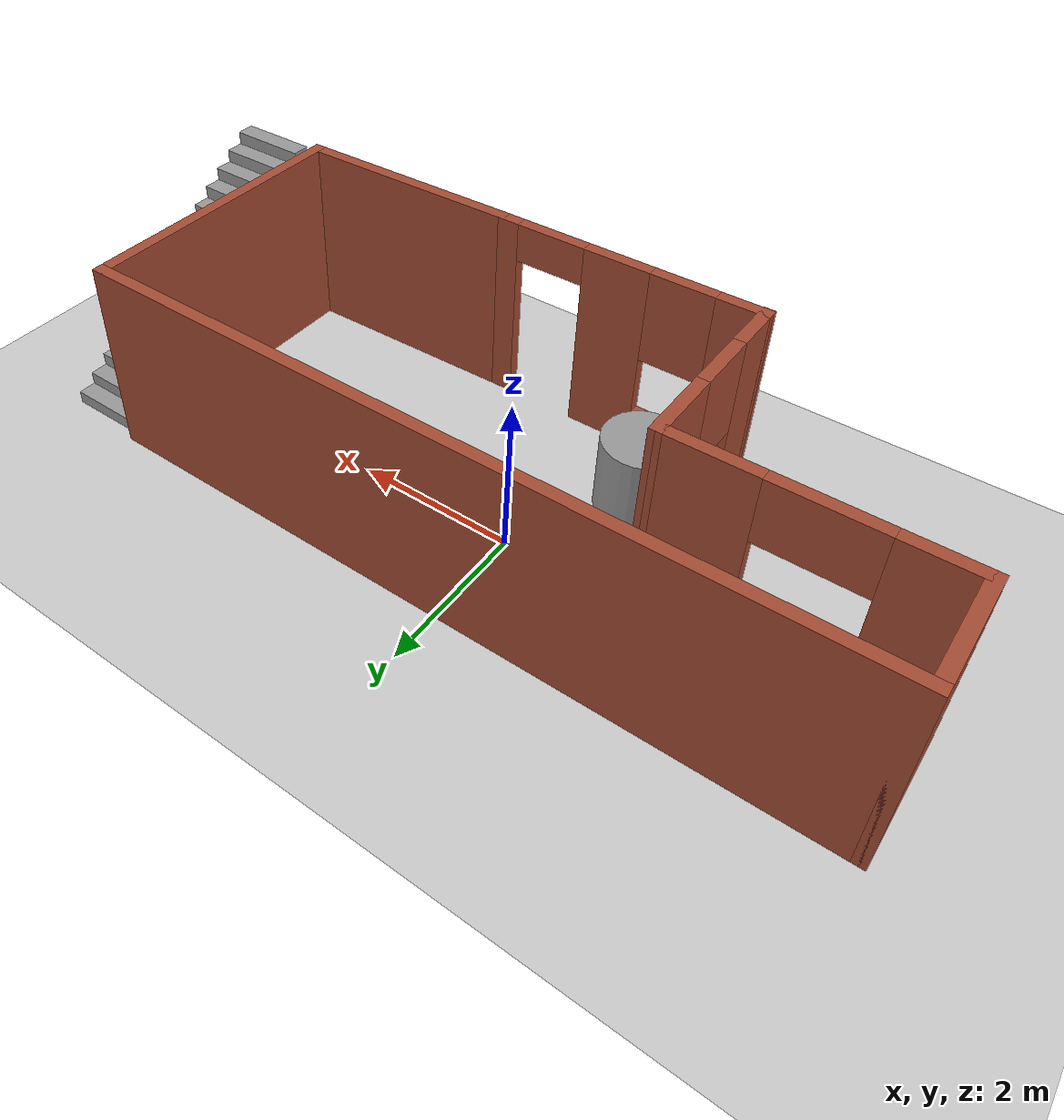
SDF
<sdf version="1.7">
 <world name="default">
  <light name="sun" type="directional">
   <pose>0 0 10 0 -0 0</pose>
   <diffuse>0.8 0.8 0.8 1</diffuse>
   <specular>0.2 0.2 0.2 1</specular>
   <attenuation>
    <range>1000</range>
    <constant>0.9</constant>
    <linear>0.01</linear>
    <quadratic>0.001</quadratic>
   </attenuation>
   <direction>-0.5 0.1 -0.9</direction>
   <spot><inner_angle>0</inner_angle><outer_angle>0</outer_angle><falloff>0</falloff></spot>
  </light>
  <model name="ground_plane">
   <static>1</static>
   <link name="link">
    <collision name="collision">
     <geometry><plane><normal>0 0 1</normal><size>100 100</size></plane></geometry>
     <surface><friction><ode><mu>100</mu><mu2>50</mu2></ode></friction></surface>
    </collision>
    <visual name="visual">
     <cast_shadows>0</cast_shadows>
     <geometry><plane><normal>0 0 1</normal><size>100 100</size></plane></geometry>
     <material>
      <script><uri>file://media/materials/scripts/gazebo.material</uri><name>Gazebo/Grey</name></script>
     </material>
    </visual>
   </link>
  </model>
  <gravity>0 0 -9.8</gravity>
  <magnetic_field>6e-06 2.3e-05 -4.2e-05</magnetic_field>
  <atmosphere type="adiabatic"/>
  <physics type="ode">
   <max_step_size>0.001</max_step_size>
   <real_time_factor>1</real_time_factor>
   <real_time_update_rate>1000</real_time_update_rate>
  </physics>
  <scene><ambient>0.4 0.4 0.4 1</ambient><background>0.7 0.7 0.7 1</background><shadows>1</shadows></scene>
  <audio><device>default</device></audio>
  <spherical_coordinates>
   <surface_model>EARTH_WGS84</surface_model>
   <latitude_deg>0</latitude_deg>
   <longitude_deg>0</longitude_deg>
   <elevation>0</elevation>
   <heading_deg>0</heading_deg>
  </spherical_coordinates>
  <model name="EJemplo1">
   <pose>0.530243 -0.568769 0 0 -0 0</pose>
   <link name="Stairs_0">
    <visual name="Stairs_0_Visual_0">
     <pose>4.77726 1.68486 0.083333 0 -0 0</pose>
     <geometry><box><size>1 0.233333 0.166667</size></box></geometry>
     <material>
      <script><uri>file://media/materials/scripts/gazebo.material</uri><name>Gazebo/Grey</name></script>
      <ambient>1 1 1 1</ambient>
     </material>
     <meta><layer>0</layer></meta>
    </visual>
    <collision name="Stairs_0_Collision_0">
     <geometry><box><size>1 0.233333 0.166667</size></box></geometry>
     <pose>4.77726 1.68486 0.083333 0 -0 0</pose>
    </collision>
    <visual name="Stairs_0_Visual_1">
     <pose>4.77726 1.45153 0.25 0 -0 0</pose>
     <geometry><box><size>1 0.233333 0.166667</size></box></geometry>
     <material>
      <script><uri>file://media/materials/scripts/gazebo.material</uri><name>Gazebo/Grey</name></script>
      <ambient>1 1 1 1</ambient>
     </material>
     <meta><layer>0</layer></meta>
    </visual>
    <collision name="Stairs_0_Collision_1">
     <geometry><box><size>1 0.233333 0.166667</size></box></geometry>
     <pose>4.77726 1.45153 0.25 0 -0 0</pose>
    </collision>
    <visual name="Stairs_0_Visual_2">
     <pose>4.77726 1.2182 0.416667 0 -0 0</pose>
     <geometry><box><size>1 0.233333 0.166667</size></box></geometry>
     <material>
      <script><uri>file://media/materials/scripts/gazebo.material</uri><name>Gazebo/Grey</name></script>
      <ambient>1 1 1 1</ambient>
     </material>
     <meta><layer>0</layer></meta>
    </visual>
    <collision name="Stairs_0_Collision_2">
     <geometry><box><size>1 0.233333 0.166667</size></box></geometry>
     <pose>4.77726 1.2182 0.416667 0 -0 0</pose>
    </collision>
    <visual name="Stairs_0_Visual_3">
     <pose>4.77726 0.984864 0.583333 0 -0 0</pose>
     <geometry><box><size>1 0.233333 0.166667</size></box></geometry>
     <material>
      <script><uri>file://media/materials/scripts/gazebo.material</uri><name>Gazebo/Grey</name></script>
      <ambient>1 1 1 1</ambient>
     </material>
     <meta><layer>0</layer></meta>
    </visual>
    <collision name="Stairs_0_Collision_3">
     <geometry><box><size>1 0.233333 0.166667</size></box></geometry>
     <pose>4.77726 0.984864 0.583333 0 -0 0</pose>
    </collision>
    <visual name="Stairs_0_Visual_4">
     <pose>4.77726 0.75153 0.75 0 -0 0</pose>
     <geometry><box><size>1 0.233333 0.166667</size></box></geometry>
     <material>
      <script><uri>file://media/materials/scripts/gazebo.material</uri><name>Gazebo/Grey</name></script>
      <ambient>1 1 1 1</ambient>
     </material>
     <meta><layer>0</layer></meta>
    </visual>
    <collision name="Stairs_0_Collision_4">
     <geometry><box><size>1 0.233333 0.166667</size></box></geometry>
     <pose>4.77726 0.75153 0.75 0 -0 0</pose>
    </collision>
    <visual name="Stairs_0_Visual_5">
     <pose>4.77726 0.518197 0.916667 0 -0 0</pose>
     <geometry><box><size>1 0.233333 0.166667</size></box></geometry>
     <material>
      <script><uri>file://media/materials/scripts/gazebo.material</uri><name>Gazebo/Grey</name></script>
      <ambient>1 1 1 1</ambient>
     </material>
     <meta><layer>0</layer></meta>
    </visual>
    <collision name="Stairs_0_Collision_5">
     <geometry><box><size>1 0.233333 0.166667</size></box></geometry>
     <pose>4.77726 0.518197 0.916667 0 -0 0</pose>
    </collision>
    <visual name="Stairs_0_Visual_6">
     <pose>4.77726 0.284864 1.08333 0 -0 0</pose>
     <geometry><box><size>1 0.233333 0.166667</size></box></geometry>
     <material>
      <script><uri>file://media/materials/scripts/gazebo.material</uri><name>Gazebo/Grey</name></script>
      <ambient>1 1 1 1</ambient>
     </material>
     <meta><layer>0</layer></meta>
    </visual>
    <collision name="Stairs_0_Collision_6">
     <geometry><box><size>1 0.233333 0.166667</size></box></geometry>
     <pose>4.77726 0.284864 1.08333 0 -0 0</pose>
    </collision>
    <visual name="Stairs_0_Visual_7">
     <pose>4.77726 0.05153 1.25 0 -0 0</pose>
     <geometry><box><size>1 0.233333 0.166667</size></box></geometry>
     <material>
      <script><uri>file://media/materials/scripts/gazebo.material</uri><name>Gazebo/Grey</name></script>
      <ambient>1 1 1 1</ambient>
     </material>
     <meta><layer>0</layer></meta>
    </visual>
    <collision name="Stairs_0_Collision_7">
     <geometry><box><size>1 0.233333 0.166667</size></box></geometry>
     <pose>4.77726 0.05153 1.25 0 -0 0</pose>
    </collision>
    <visual name="Stairs_0_Visual_8">
     <pose>4.77726 -0.181803 1.41667 0 -0 0</pose>
     <geometry><box><size>1 0.233333 0.166667</size></box></geometry>
     <material>
      <script><uri>file://media/materials/scripts/gazebo.material</uri><name>Gazebo/Grey</name></script>
      <ambient>1 1 1 1</ambient>
     </material>
     <meta><layer>0</layer></meta>
    </visual>
    <collision name="Stairs_0_Collision_8">
     <geometry><box><size>1 0.233333 0.166667</size></box></geometry>
     <pose>4.77726 -0.181803 1.41667 0 -0 0</pose>
    </collision>
    <visual name="Stairs_0_Visual_9">
     <pose>4.77726 -0.415136 1.58333 0 -0 0</pose>
     <geometry><box><size>1 0.233333 0.166667</size></box></geometry>
     <material>
      <script><uri>file://media/materials/scripts/gazebo.material</uri><name>Gazebo/Grey</name></script>
      <ambient>1 1 1 1</ambient>
     </material>
     <meta><layer>0</layer></meta>
    </visual>
    <collision name="Stairs_0_Collision_9">
     <geometry><box><size>1 0.233333 0.166667</size></box></geometry>
     <pose>4.77726 -0.415136 1.58333 0 -0 0</pose>
    </collision>
    <visual name="Stairs_0_Visual_10">
     <pose>4.77726 -0.648469 1.75 0 -0 0</pose>
     <geometry><box><size>1 0.233333 0.166667</size></box></geometry>
     <material>
      <script><uri>file://media/materials/scripts/gazebo.material</uri><name>Gazebo/Grey</name></script>
      <ambient>1 1 1 1</ambient>
     </material>
     <meta><layer>0</layer></meta>
    </visual>
    <collision name="Stairs_0_Collision_10">
     <geometry><box><size>1 0.233333 0.166667</size></box></geometry>
     <pose>4.77726 -0.648469 1.75 0 -0 0</pose>
    </collision>
    <visual name="Stairs_0_Visual_11">
     <pose>4.77726 -0.881803 1.91667 0 -0 0</pose>
     <geometry><box><size>1 0.233333 0.166667</size></box></geometry>
     <material>
      <script><uri>file://media/materials/scripts/gazebo.material</uri><name>Gazebo/Grey</name></script>
      <ambient>1 1 1 1</ambient>
     </material>
     <meta><layer>0</layer></meta>
    </visual>
    <collision name="Stairs_0_Collision_11">
     <geometry><box><size>1 0.233333 0.166667</size></box></geometry>
     <pose>4.77726 -0.881803 1.91667 0 -0 0</pose>
    </collision>
    <visual name="Stairs_0_Visual_12">
     <pose>4.77726 -1.11514 2.08333 0 -0 0</pose>
     <geometry><box><size>1 0.233333 0.166667</size></box></geometry>
     <material>
      <script><uri>file://media/materials/scripts/gazebo.material</uri><name>Gazebo/Grey</name></script>
      <ambient>1 1 1 1</ambient>
     </material>
     <meta><layer>0</layer></meta>
    </visual>
    <collision name="Stairs_0_Collision_12">
     <geometry><box><size>1 0.233333 0.166667</size></box></geometry>
     <pose>4.77726 -1.11514 2.08333 0 -0 0</pose>
    </collision>
    <visual name="Stairs_0_Visual_13">
     <pose>4.77726 -1.34847 2.25 0 -0 0</pose>
     <geometry><box><size>1 0.233333 0.166667</size></box></geometry>
     <material>
      <script><uri>file://media/materials/scripts/gazebo.material</uri><name>Gazebo/Grey</name></script>
      <ambient>1 1 1 1</ambient>
     </material>
     <meta><layer>0</layer></meta>
    </visual>
    <collision name="Stairs_0_Collision_13">
     <geometry><box><size>1 0.233333 0.166667</size></box></geometry>
     <pose>4.77726 -1.34847 2.25 0 -0 0</pose>
    </collision>
    <visual name="Stairs_0_Visual_14">
     <pose>4.77726 -1.5818 2.41667 0 -0 0</pose>
     <geometry><box><size>1 0.233333 0.166667</size></box></geometry>
     <material>
      <script><uri>file://media/materials/scripts/gazebo.material</uri><name>Gazebo/Grey</name></script>
      <ambient>1 1 1 1</ambient>
     </material>
     <meta><layer>0</layer></meta>
    </visual>
    <collision name="Stairs_0_Collision_14">
     <geometry><box><size>1 0.233333 0.166667</size></box></geometry>
     <pose>4.77726 -1.5818 2.41667 0 -0 0</pose>
    </collision>
   </link>
   <link name="Wall_0">
    <pose>-0.417374 -1.81954 0 0 -0 -3.13563</pose>
    <visual name="Wall_0_Visual_0">
     <pose>-1.58925 0 1.25 0 -0 0</pose>
     <geometry><box><size>0.362007 0.15 2.5</size></box></geometry>
     <material>
      <script><uri>file://media/materials/scripts/gazebo.material</uri><name>Gazebo/Bricks</name></script>
      <ambient>1 1 1 1</ambient>
     </material>
     <meta><layer>0</layer></meta>
    </visual>
    <collision name="Wall_0_Collision_0">
     <geometry><box><size>0.362007 0.15 2.5</size></box></geometry>
     <pose>-1.58925 0 1.25 0 -0 0</pose>
    </collision>
    <visual name="Wall_0_Visual_1">
     <pose>-0.083645 0 1.25 0 -0 0</pose>
     <geometry><box><size>0.849212 0.15 2.5</size></box></geometry>
     <material>
      <script><uri>file://media/materials/scripts/gazebo.material</uri><name>Gazebo/Bricks</name></script>
      <ambient>1 1 1 1</ambient>
     </material>
     <meta><layer>0</layer></meta>
    </visual>
    <collision name="Wall_0_Collision_1">
     <geometry><box><size>0.849212 0.15 2.5</size></box></geometry>
     <pose>-0.083645 0 1.25 0 -0 0</pose>
    </collision>
    <visual name="Wall_0_Visual_2">
     <pose>1.05561 0 0.25 0 -0 0</pose>
     <geometry><box><size>1.4293 0.15 0.5</size></box></geometry>
     <material>
      <script><uri>file://media/materials/scripts/gazebo.material</uri><name>Gazebo/Bricks</name></script>
      <ambient>1 1 1 1</ambient>
     </material>
     <meta><layer>0</layer></meta>
    </visual>
    <collision name="Wall_0_Collision_2">
     <geometry><box><size>1.4293 0.15 0.5</size></box></geometry>
     <pose>1.05561 0 0.25 0 -0 0</pose>
    </collision>
    <visual name="Wall_0_Visual_3">
     <pose>1.45561 0 1.5 0 -0 0</pose>
     <geometry><box><size>0.629297 0.15 2</size></box></geometry>
     <material>
      <script><uri>file://media/materials/scripts/gazebo.material</uri><name>Gazebo/Bricks</name></script>
      <ambient>1 1 1 1</ambient>
     </material>
     <meta><layer>0</layer></meta>
    </visual>
    <collision name="Wall_0_Collision_3">
     <geometry><box><size>0.629297 0.15 2</size></box></geometry>
     <pose>1.45561 0 1.5 0 -0 0</pose>
    </collision>
    <visual name="Wall_0_Visual_4">
     <pose>0.740961 0 1.9 0 -0 0</pose>
     <geometry><box><size>0.8 0.15 1.2</size></box></geometry>
     <material>
      <script><uri>file://media/materials/scripts/gazebo.material</uri><name>Gazebo/Bricks</name></script>
      <ambient>1 1 1 1</ambient>
     </material>
     <meta><layer>0</layer></meta>
    </visual>
    <collision name="Wall_0_Collision_4">
     <geometry><box><size>0.8 0.15 1.2</size></box></geometry>
     <pose>0.740961 0 1.9 0 -0 0</pose>
    </collision>
    <visual name="Wall_0_Visual_5">
     <pose>-0.958251 0 2.25 0 -0 0</pose>
     <geometry><box><size>0.9 0.15 0.5</size></box></geometry>
     <material>
      <script><uri>file://media/materials/scripts/gazebo.material</uri><name>Gazebo/Bricks</name></script>
      <ambient>1 1 1 1</ambient>
     </material>
     <meta><layer>0</layer></meta>
    </visual>
    <collision name="Wall_0_Collision_5">
     <geometry><box><size>0.9 0.15 0.5</size></box></geometry>
     <pose>-0.958251 0 2.25 0 -0 0</pose>
    </collision>
   </link>
   <link name="Wall_1">
    <pose>-2.10743 -0.674834 0 0 -0 1.56636</pose>
    <visual name="Wall_1_Visual_0">
     <pose>-0.886037 0 1.25 0 -0 0</pose>
     <geometry><box><size>0.707817 0.15 2.5</size></box></geometry>
     <material>
      <script><uri>file://media/materials/scripts/gazebo.material</uri><name>Gazebo/Bricks</name></script>
      <ambient>1 1 1 1</ambient>
     </material>
     <meta><layer>0</layer></meta>
    </visual>
    <collision name="Wall_1_Collision_0">
     <geometry><box><size>0.707817 0.15 2.5</size></box></geometry>
     <pose>-0.886037 0 1.25 0 -0 0</pose>
    </collision>
    <visual name="Wall_1_Visual_1">
     <pose>0.353908 0 0.25 0 -0 0</pose>
     <geometry><box><size>1.77207 0.15 0.5</size></box></geometry>
     <material>
      <script><uri>file://media/materials/scripts/gazebo.material</uri><name>Gazebo/Bricks</name></script>
      <ambient>1 1 1 1</ambient>
     </material>
     <meta><layer>0</layer></meta>
    </visual>
    <collision name="Wall_1_Collision_1">
     <geometry><box><size>1.77207 0.15 0.5</size></box></geometry>
     <pose>0.353908 0 0.25 0 -0 0</pose>
    </collision>
    <visual name="Wall_1_Visual_2">
     <pose>0.753908 0 1.5 0 -0 0</pose>
     <geometry><box><size>0.972074 0.15 2</size></box></geometry>
     <material>
      <script><uri>file://media/materials/scripts/gazebo.material</uri><name>Gazebo/Bricks</name></script>
      <ambient>1 1 1 1</ambient>
     </material>
     <meta><layer>0</layer></meta>
    </visual>
    <collision name="Wall_1_Collision_2">
     <geometry><box><size>0.972074 0.15 2</size></box></geometry>
     <pose>0.753908 0 1.5 0 -0 0</pose>
    </collision>
    <visual name="Wall_1_Visual_3">
     <pose>-0.132128 0 1.9 0 -0 0</pose>
     <geometry><box><size>0.8 0.15 1.2</size></box></geometry>
     <material>
      <script><uri>file://media/materials/scripts/gazebo.material</uri><name>Gazebo/Bricks</name></script>
      <ambient>1 1 1 1</ambient>
     </material>
     <meta><layer>0</layer></meta>
    </visual>
    <collision name="Wall_1_Collision_3">
     <geometry><box><size>0.8 0.15 1.2</size></box></geometry>
     <pose>-0.132128 0 1.9 0 -0 0</pose>
    </collision>
   </link>
   <link name="Wall_2">
    <pose>-3.65226 0.4901 0 0 -0 3.14159</pose>
    <visual name="Wall_2_Visual_0">
     <pose>-1.04712 0 1.25 0 -0 0</pose>
     <geometry><box><size>1.15577 0.15 2.5</size></box></geometry>
     <material>
      <script><uri>file://media/materials/scripts/gazebo.material</uri><name>Gazebo/Bricks</name></script>
      <ambient>1 1 1 1</ambient>
     </material>
     <meta><layer>0</layer></meta>
    </visual>
    <collision name="Wall_2_Collision_0">
     <geometry><box><size>1.15577 0.15 2.5</size></box></geometry>
     <pose>-1.04712 0 1.25 0 -0 0</pose>
    </collision>
    <visual name="Wall_2_Visual_1">
     <pose>0.577885 0 0.25 0 -0 0</pose>
     <geometry><box><size>2.09423 0.15 0.5</size></box></geometry>
     <material>
      <script><uri>file://media/materials/scripts/gazebo.material</uri><name>Gazebo/Bricks</name></script>
      <ambient>1 1 1 1</ambient>
     </material>
     <meta><layer>0</layer></meta>
    </visual>
    <collision name="Wall_2_Collision_1">
     <geometry><box><size>2.09423 0.15 0.5</size></box></geometry>
     <pose>0.577885 0 0.25 0 -0 0</pose>
    </collision>
    <visual name="Wall_2_Visual_2">
     <pose>1.17789 0 1.5 0 -0 0</pose>
     <geometry><box><size>0.89423 0.15 2</size></box></geometry>
     <material>
      <script><uri>file://media/materials/scripts/gazebo.material</uri><name>Gazebo/Bricks</name></script>
      <ambient>1 1 1 1</ambient>
     </material>
     <meta><layer>0</layer></meta>
    </visual>
    <collision name="Wall_2_Collision_2">
     <geometry><box><size>0.89423 0.15 2</size></box></geometry>
     <pose>1.17789 0 1.5 0 -0 0</pose>
    </collision>
    <visual name="Wall_2_Visual_3">
     <pose>0.13077 0 2.1 0 -0 0</pose>
     <geometry><box><size>1.2 0.15 0.8</size></box></geometry>
     <material>
      <script><uri>file://media/materials/scripts/gazebo.material</uri><name>Gazebo/Bricks</name></script>
      <ambient>1 1 1 1</ambient>
     </material>
     <meta><layer>0</layer></meta>
    </visual>
    <collision name="Wall_2_Collision_3">
     <geometry><box><size>1.2 0.15 0.8</size></box></geometry>
     <pose>0.13077 0 2.1 0 -0 0</pose>
    </collision>
   </link>
   <link name="Wall_4">
    <collision name="Wall_4_Collision">
     <geometry><box><size>1.5 0.15 2.5</size></box></geometry>
     <pose>0 0 1.25 0 -0 0</pose>
    </collision>
    <visual name="Wall_4_Visual">
     <pose>0 0 1.25 0 -0 0</pose>
     <geometry><box><size>1.5 0.15 2.5</size></box></geometry>
     <material>
      <script><uri>file://media/materials/scripts/gazebo.material</uri><name>Gazebo/Bricks</name></script>
      <ambient>1 1 1 1</ambient>
     </material>
     <meta><layer>0</layer></meta>
    </visual>
    <pose>-5.20226 1.1651 0 0 -0 1.5708</pose>
   </link>
   <link name="Wall_5">
    <collision name="Wall_5_Collision">
     <geometry><box><size>9.5 0.15 2.5</size></box></geometry>
     <pose>0 0 1.25 0 -0 0</pose>
    </collision>
    <visual name="Wall_5_Visual">
     <pose>0 0 1.25 0 -0 0</pose>
     <geometry><box><size>9.5 0.15 2.5</size></box></geometry>
     <material>
      <script><uri>file://media/materials/scripts/gazebo.material</uri><name>Gazebo/Bricks</name></script>
      <ambient>1 1 1 1</ambient>
     </material>
     <meta><layer>0</layer></meta>
    </visual>
    <pose>-0.52726 1.8401 0 0 -0 0</pose>
   </link>
   <link name="Wall_6">
    <collision name="Wall_6_Collision">
     <geometry><box><size>3.75 0.15 2.5</size></box></geometry>
     <pose>0 0 1.25 0 -0 0</pose>
    </collision>
    <visual name="Wall_6_Visual">
     <pose>0 0 1.25 0 -0 0</pose>
     <geometry><box><size>3.75 0.15 2.5</size></box></geometry>
     <material>
      <script><uri>file://media/materials/scripts/gazebo.material</uri><name>Gazebo/Bricks</name></script>
      <ambient>1 1 1 1</ambient>
     </material>
     <meta><layer>0</layer></meta>
    </visual>
    <pose>4.14774 0.0401 0 0 -0 -1.5708</pose>
   </link>
   <link name="Wall_9">
    <collision name="Wall_9_Collision">
     <geometry><box><size>3.02031 0.15 2.5</size></box></geometry>
     <pose>0 0 1.25 0 -0 0</pose>
    </collision>
    <visual name="Wall_9_Visual">
     <pose>0 0 1.25 0 -0 0</pose>
     <geometry><box><size>3.02031 0.15 2.5</size></box></geometry>
     <material>
      <script><uri>file://media/materials/scripts/gazebo.material</uri><name>Gazebo/Bricks</name></script>
      <ambient>1 1 1 1</ambient>
     </material>
     <meta><layer>0</layer></meta>
    </visual>
    <pose>2.7128 -1.78466 0 0 -0 0.017255</pose>
   </link>
   <static>1</static>
  </model>
  <model name="unit_cylinder">
   <pose>-0.848032 -1.44393 0.499998 3e-06 -4e-06 0</pose>
   <link name="link">
    <inertial>
     <mass>1</mass>
     <inertia><ixx>0.145833</ixx><ixy>0</ixy><ixz>0</ixz><iyy>0.145833</iyy><iyz>0</iyz><izz>0.125</izz></inertia>
    </inertial>
    <collision name="collision">
     <geometry><cylinder><radius>0.5</radius><length>1</length></cylinder></geometry>
    </collision>
    <visual name="visual">
     <geometry><cylinder><radius>0.5</radius><length>1</length></cylinder></geometry>
     <material>
      <script><name>Gazebo/Grey</name><uri>file://media/materials/scripts/gazebo.material</uri></script>
     </material>
    </visual>
   </link>
  </model>
  <model name="cubo_15x15x20">
   <link name="link">
    <inertial>
     <mass>1</mass>
     <inertia>
      <ixx>0.166667</ixx>
      <ixy>0</ixy>
      <ixz>0</ixz>
      <iyy>0.166667</iyy>
      <iyz>0</iyz>
      <izz>0.166667</izz>
     </inertia>
    </inertial>
    <visual name="visual">
     <geometry><box><size>0.15 0.15 0.2</size></box></geometry>
     <material>
      <script><name>Gazebo/Green</name><uri>file://media/materials/scripts/gazebo.material</uri></script>
      <shader type="pixel"><normal_map>__default__</normal_map></shader>
      <ambient>0.3 0.3 0.3 1</ambient>
      <diffuse>0.7 0.7 0.7 1</diffuse>
      <specular>0.01 0.01 0.01 1</specular>
      <emissive>0 0 0 1</emissive>
     </material>
    </visual>
    <collision name="collision">
     <geometry><box><size>0.15 0.15 0.2</size></box></geometry>
     <surface>
      <friction>
       <ode><mu>1</mu><mu2>1</mu2><fdir1>0 0 0</fdir1><slip1>0</slip1><slip2>0</slip2></ode>
       <torsional>
        <coefficient>1</coefficient>
        <patch_radius>0</patch_radius>
        <surface_radius>0</surface_radius>
        <use_patch_radius>1</use_patch_radius>
        <ode><slip>0</slip></ode>
       </torsional>
      </friction>
      <bounce><restitution_coefficient>0</restitution_coefficient><threshold>1e+06</threshold></bounce>
      <contact>
       <collide_without_contact>0</collide_without_contact>
       <collide_without_contact_bitmask>1</collide_without_contact_bitmask>
       <collide_bitmask>1</collide_bitmask>
       <ode>
        <soft_cfm>0</soft_cfm>
        <soft_erp>0.2</soft_erp>
        <kp>1e+13</kp>
        <kd>1</kd>
        <max_vel>0.01</max_vel>
        <min_depth>0</min_depth>
       </ode>
       <bullet>
        <split_impulse>1</split_impulse>
        <split_impulse_penetration_threshold>-0.01</split_impulse_penetration_threshold>
        <soft_cfm>0</soft_cfm>
        <soft_erp>0.2</soft_erp>
        <kp>1e+13</kp>
        <kd>1</kd>
       </bullet>
      </contact>
     </surface>
    </collision>
   </link>
   <static>0</static>
   <pose>3.78721 0.634206 0.1 3e-06 -0 -4e-06</pose>
  </model>
 </world>
</sdf>
